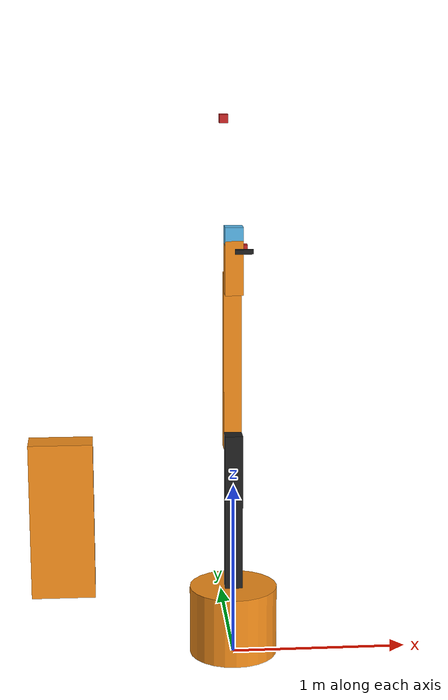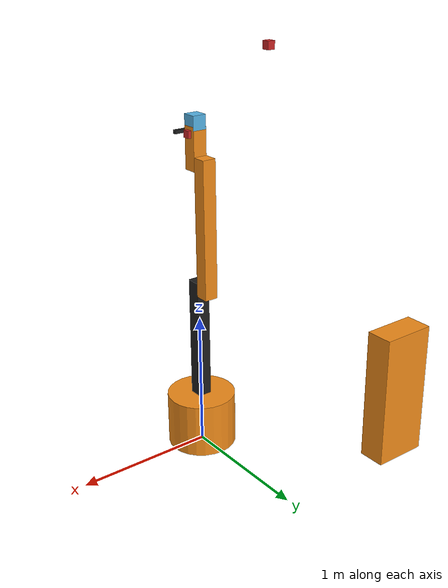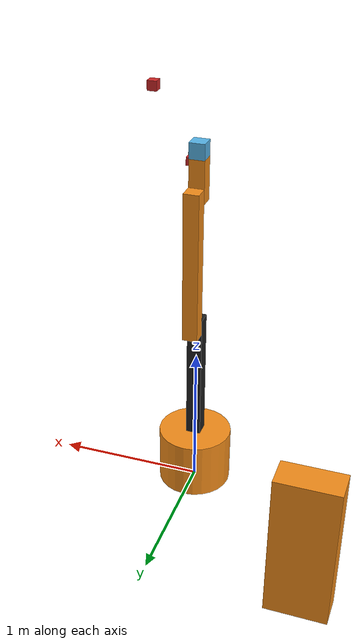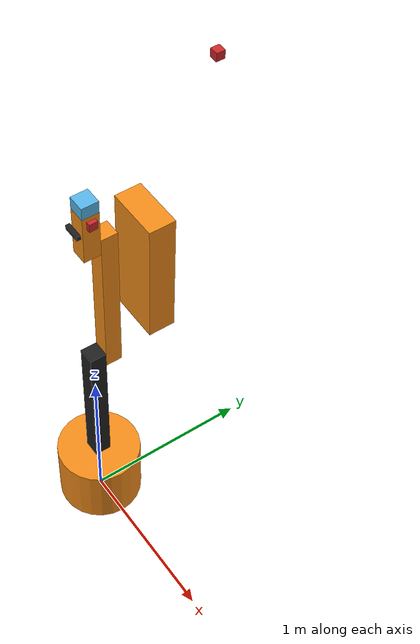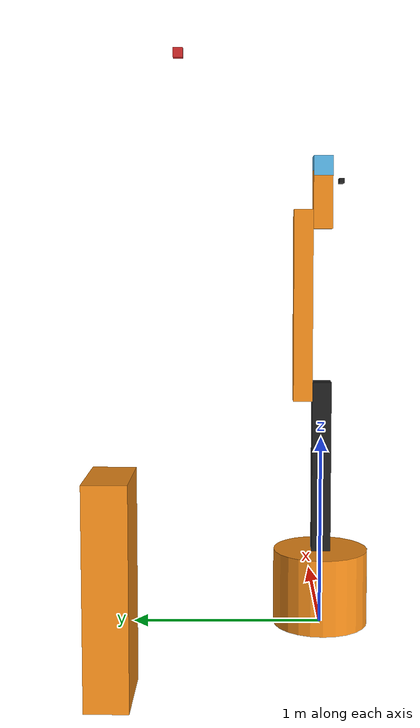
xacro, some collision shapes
<?xml version="1.0"?>
<!-- Revolute-Revolute Manipulator -->
<robot name="rrbot" xmlns:xacro="http://www.ros.org/wiki/xacro">

  <!-- Constants for robot dimensions -->
  <xacro:property name="PI" value="3.1415926535897931"/>
  <xacro:property name="mass" value="1" /> <!-- arbitrary value for mass -->
  <xacro:property name="width" value="0.1" /> <!-- Square dimensions (widthxwidth) of beams -->
  <xacro:property name="height1" value=".4" /> <!-- Link 1 -->
  <xacro:property name="radius1" value=".25" /> <!-- Link 1 -->
  <xacro:property name="height2" value="1" /> <!-- Link 2 -->
  <xacro:property name="height3" value="1" /> <!-- Link 3 -->
  <xacro:property name="height4" value=".30" /> <!-- Link 3 -->
  <xacro:property name="height5" value=".10" /> <!-- Link 3 -->
  <xacro:property name="width1" value=".025" /> <!-- Link 3 -->
  <xacro:property name="dist" value="1.0" /> <!-- Link 3 -->
  <xacro:property name="camera_link" value="0.05" /> <!-- Size of square 'camera' box -->
  <xacro:property name="camera_link_2" value="0.05" /> <!-- Size of square 'camera' box -->
  <xacro:property name="axel_offset" value="0.05" /> <!-- Space btw top of beam and the each joint -->

  <!-- Import all Gazebo-customization elements, including Gazebo colors -->
  <xacro:include filename="$(find rrbot_description)/urdf/rrbot.gazebo" />
  <!-- Import Rviz colors -->
  <xacro:include filename="$(find rrbot_description)/urdf/materials.xacro" />

  <!-- Used for fixing robot to Gazebo 'base_link' -->
  <link name="world"/>

   <xacro:include filename="$(find rrbot_description)/urdf/rrbot_grip.xacro" />

  <joint name="joint0" type="continuous">
    <parent link="world"/>
    <child link="link1"/>
    <origin xyz="0 0 0" rpy="0 0 0"/>
    <axis xyz="0 0 1"/>
    <dynamics damping="0.7"/>
  </joint>

  <joint name="linx_joint" type="prismatic">
    <parent link="world"/>
    <child link="box1"/>
    <axis xyz="1 0 0"/>
    <limit lower="0" upper="5" effort="1000" velocity="1.0"/>
  </joint>

<!--xarco:grip_plam prefix=""/-->

  <joint name="liny_joint" type="prismatic">
    <parent link="box1"/>
    <child link="box"/>
    <axis xyz="0 1 0"/>
    <limit lower="0" upper="5" effort="1000" velocity="0.2"/>
  </joint>

  <!-- Camera -->
  <link name="camera_link_2">
    <collision>
      <origin xyz="0 0 -" rpy="0 0 0"/>
      <geometry>
	<box size="${camera_link_2} ${camera_link_2} ${camera_link_2}"/>
      </geometry>
    </collision>

    <visual>
      <origin xyz="0 0 0" rpy="0 0 0"/>
      <geometry>
	<box size="${camera_link_2} ${camera_link_2} ${camera_link_2}"/>
      </geometry>
      <material name="red"/>
    </visual>

    <inertial>
      <mass value="1e-5" />
      <origin xyz="0 0 0" rpy="0 0 0"/>
      <inertia ixx="1e-6" ixy="0" ixz="0" iyy="1e-6" iyz="0" izz="1e-6" />
    </inertial>
  </link>

  <joint name="camera_optical_joint_2" type="fixed">
    <!-- these values have to be these values otherwise the gazebo camera image
        won't be aligned properly with the frame it is supposedly originating from -->
    <!--origin xyz="0 2 2" rpy="0 ${pi/4} ${-pi/2}"/-->
    <!--origin xyz="3 3 3" rpy="${0/2} ${pi/4} ${-pi/4-pi/2}"/-->
    <!--origin xyz="0 0.75 3" rpy="0 ${pi/2} ${-pi/2}"/-->
    <origin xyz="0 .75 3" rpy="0 ${ pi/2} ${-0/2}"/>
    <!--origin xyz="3 .75 1" rpy="${pi} ${pi} ${0}"/-->
    <parent link="world"/>
    <child link="camera_link_2"/>
  </joint>

  <!-- Base Link -->
  <link name="link1">
    <collision>
      <origin xyz="0 0 ${height1/2}" rpy="0 0 0"/>
      <geometry>
	<cylinder length="${height1}" radius="${radius1}"/>
      </geometry>
    </collision>

    <visual>
      <origin xyz="0 0 ${height1/2}" rpy="0 0 0"/>
      <geometry>
	<cylinder length="${height1}" radius="${radius1}"/>
      </geometry>
      <material name="orange"/>
    </visual>

    <inertial>
      <origin xyz="0 0 ${height1/2}" rpy="0 0 0"/>
      <mass value="${mass}"/>
      <inertia
	  ixx="${mass / 12.0 * (width*width + height1*height1)}" ixy="0.0" ixz="0.0"
	  iyy="${mass / 12.0 * (height1*height1 + width*width)}" iyz="0.0"
	  izz="${mass / 12.0 * (width*width + width*width)}"/>
    </inertial>
  </link>

  <joint name="joint1" type="continuous">
    <parent link="link1"/>
    <child link="link2"/>
    <origin xyz="0 0 ${height1 - axel_offset}" rpy="0 0 0"/>

    <axis xyz="0 1 0"/>
    <dynamics damping="0.7"/>
  </joint>

  <!-- Middle Link -->
  <link name="link2">
    <collision>
      <origin xyz="0 0 ${height2/2 - axel_offset}" rpy="0 0 0"/>
      <geometry>
	<box size="${width} ${width} ${height2}"/>
      </geometry>
    </collision>

    <visual>
      <origin xyz="0 0 ${height2/2 - axel_offset}" rpy="0 0 0"/>
      <geometry>
	<box size="${width} ${width} ${height2}"/>
      </geometry>
      <material name="black"/>
    </visual>

    <inertial>
      <origin xyz="0 0 ${height2/2 - axel_offset}" rpy="0 0 0"/>
      <mass value="${mass}"/>
      <inertia
	  ixx="${mass / 12.0 * (width*width + height2*height2)}" ixy="0.0" ixz="0.0"
	  iyy="${mass / 12.0 * (height2*height2 + width*width)}" iyz="0.0"
	  izz="${mass / 12.0 * (width*width + width*width)}"/>
    </inertial>
  </link>

  <joint name="joint2" type="continuous">
    <parent link="link2"/>
    <child link="link3"/>
    <origin xyz="0 ${width} ${height2 - axel_offset*2}" rpy="0 0 0"/>
    <axis xyz="0 1 0"/>
    <dynamics damping="0.7"/>
  </joint>

  <!-- Top Link -->
  <link name="link3">
    <collision>
      <origin xyz="0 0 ${height3/2 - axel_offset}" rpy="0 0 0"/>
      <geometry>
	<box size="${width} ${width} ${height3}"/>
      </geometry>
    </collision>

    <visual>
      <origin xyz="0 0 ${height3/2 - axel_offset}" rpy="0 0 0"/>
      <geometry>
	<box size="${width} ${width} ${height3}"/>
      </geometry>
      <material name="orange"/>
    </visual>

    <inertial>
      <origin xyz="0 0 ${height3/2 - axel_offset}" rpy="0 0 0"/>
      <mass value="${mass}"/>
      <inertia
	  ixx="${mass / 12.0 * (width*width + height3*height3)}" ixy="0.0" ixz="0.0"
	  iyy="${mass / 12.0 * (height3*height3 + width*width)}" iyz="0.0"
	  izz="${mass / 12.0 * (width*width + width*width)}"/>
    </inertial>
  </link>
  <joint name="joint3" type="continuous">
    <parent link="link3"/>
    <child link="link4"/>
    <origin xyz="0 ${-width} ${height3 - axel_offset*2}" rpy="0 0 0"/>
    <axis xyz="0 1 0"/>
    <dynamics damping="0.7"/>
  </joint>

  <!-- Top Link -->
  <link name="link4">
    <collision>
      <origin xyz="0 0 ${height4/2 - axel_offset}" rpy="0 0 0"/>
      <geometry>
	<box size="${width} ${width} ${height4}"/>
      </geometry>
    </collision>

    <visual>
      <origin xyz="0 0 ${height4/2 - axel_offset}" rpy="0 0 0"/>
      <geometry>
	<box size="${width} ${width} ${height4}"/>
      </geometry>
      <material name="orange"/>
    </visual>

    <inertial>
      <origin xyz="0 0 ${height4/2 - axel_offset}" rpy="0 0 0"/>
      <mass value="${mass}"/>
      <inertia
	  ixx="${mass / 12.0 * (width*width + height4*height4)}" ixy="0.0" ixz="0.0"
	  iyy="${mass / 12.0 * (height4*height4 + width*width)}" iyz="0.0"
	  izz="${mass / 12.0 * (width*width + width*width)}"/>
    </inertial>
  </link>

<!--gripper.................................................................................-->
<link name="link5">
    <collision>
      <origin xyz="0 0 ${height5/2-axel_offset}" rpy="0 ${0/2} 0"/>
      <geometry>
	<box size="${width1} ${width1} ${height5}"/>
      </geometry>
    </collision>

    <visual>
      <origin xyz="0 0 ${height5/2-axel_offset}" rpy="0 ${0/2} 0"/>
      <geometry>
	<box size="${width1} ${width1} ${height5}"/>
      </geometry>
      <material name="black"/>
    </visual>

    <inertial>
      <origin xyz="0 0 ${height5/2-axel_offset}" rpy="0 ${0/2} 0"/>
      <mass value="${0}"/>
      <inertia
	  ixx="${mass / 12.0 * (width*width + height4*height4)}" ixy="0.0" ixz="0.0"
	  iyy="${mass / 12.0 * (height4*height4 + width*width)}" iyz="0.0"
	  izz="${mass / 12.0 * (width*width + width*width)}"/>
    </inertial>
  </link>
  <joint name="joint4" type="fixed">
    <parent link="link4"/>
    <child link="link5"/>
    <origin xyz="0.05 ${-width} ${height4 - axel_offset*2}" rpy="0 ${pi/2} 0"/>
    <!--axis xyz="0 1 0"/-->
    <!--limit effort="30" velocity="1.0" lower="0" upper="0" /-->
    <dynamics damping="0.7"/>
  </joint>

<gazebo>
      <plugin name="gazebo_ros_vacuum_gripper" filename="libgazebo_ros_vacuum_gripper.so">
        <robotNamespace>/rrbot/left_vacuum_gripper</robotNamespace>
        <bodyName>link5</bodyName>
        <topicName>grasping</topicName>
      </plugin>
</gazebo>

  <!-- Hokuyo Laser -->
  <link name="hokuyo_link">
    <collision>
      <origin xyz="0 0 0" rpy="0 0 0"/>
      <geometry>
	<box size="0.1 0.1 0.1"/>
      </geometry>
    </collision>

    <visual>
      <origin xyz="0 0 0" rpy="0 0 0"/>
      <geometry>
        <mesh filename="package://rrbot_description/meshes/hokuyo.dae"/>
      </geometry>
    </visual>

    <inertial>
      <mass value="1e-5" />
      <origin xyz="0 0 0" rpy="0 0 0"/>
      <inertia ixx="1e-6" ixy="0" ixz="0" iyy="1e-6" iyz="0" izz="1e-6" />
    </inertial>
  </link>

  <joint name="hokuyo_joint" type="fixed">
    <axis xyz="0 1 0" />
    <origin xyz="0 0 ${height4 - axel_offset/2}" rpy="0 -1.57 0"/>
    <parent link="link4"/>
    <child link="hokuyo_link"/>
  </joint>

  <joint name="camera_joint" type="fixed">
    <axis xyz="0 1 0" />
    <origin xyz="${camera_link} 0 ${height4 - axel_offset*2}" rpy="0 0 0"/>
    <parent link="link4"/>
    <child link="camera_link"/>
  </joint>

  <!-- Camera -->
  <link name="camera_link">
    <collision>
      <origin xyz="0 0 0" rpy="0 0 0"/>
      <geometry>
	<box size="${camera_link} ${camera_link} ${camera_link}"/>
      </geometry>
    </collision>

    <visual>
      <origin xyz="0 0 0" rpy="0 0 0"/>
      <geometry>
	<box size="${camera_link} ${camera_link} ${camera_link}"/>
      </geometry>
      <material name="red"/>
    </visual>

    <inertial>
      <mass value="1e-5" />
      <origin xyz="0 0 0" rpy="0 0 0"/>
      <inertia ixx="1e-6" ixy="0" ixz="0" iyy="1e-6" iyz="0" izz="1e-6" />
    </inertial>
  </link>

  <!-- generate an optical frame http://www.ros.org/reps/rep-0103.html#suffix-frames
      so that ros and opencv can operate on the camera frame correctly -->
  <joint name="camera_optical_joint" type="fixed">
    <!-- these values have to be these values otherwise the gazebo camera image
        won't be aligned properly with the frame it is supposedly originating from -->
    <origin xyz="0 0 0" rpy="${-pi/2} 0 ${-pi/2}"/>
    <parent link="camera_link"/>
    <child link="camera_link_optical"/>
  </joint>

  <link name="camera_link_optical">
  </link>
   <transmission name="tran0">
    <type>transmission_interface/SimpleTransmission</type>
    <joint name="joint0">
      <hardwareInterface>hardware_interface/EffortJointInterface</hardwareInterface>
    </joint>
    <actuator name="motor0">
      <hardwareInterface>hardware_interface/EffortJointInterface</hardwareInterface>
      <mechanicalReduction>1</mechanicalReduction>
    </actuator>
  </transmission>
  <transmission name="tran1">
    <type>transmission_interface/SimpleTransmission</type>
    <joint name="joint1">
      <hardwareInterface>hardware_interface/EffortJointInterface</hardwareInterface>
    </joint>
    <actuator name="motor1">
      <hardwareInterface>hardware_interface/EffortJointInterface</hardwareInterface>
      <mechanicalReduction>1</mechanicalReduction>
    </actuator>
  </transmission>

  <transmission name="tran2">
    <type>transmission_interface/SimpleTransmission</type>
    <joint name="joint2">
      <hardwareInterface>hardware_interface/EffortJointInterface</hardwareInterface>
    </joint>
    <actuator name="motor2">
      <hardwareInterface>hardware_interface/EffortJointInterface</hardwareInterface>
      <mechanicalReduction>1</mechanicalReduction>
    </actuator>
  </transmission>

  <transmission name="tran3">
    <type>transmission_interface/SimpleTransmission</type>
    <joint name="joint3">
      <hardwareInterface>hardware_interface/EffortJointInterface</hardwareInterface>
    </joint>
    <actuator name="motor3">
      <hardwareInterface>hardware_interface/EffortJointInterface</hardwareInterface>
      <mechanicalReduction>1</mechanicalReduction>
    </actuator>
  </transmission>

<transmission name="lx_transmission">
    <type>transmission_interface/SimpleTransmission</type>
    <joint name="linx_joint">
      <hardwareInterface>hardware_interface/VelocityJointInterface </hardwareInterface>
    </joint>
    <actuator name="lx_motor">
      <hardwareInterface>hardware_interface/VelocityJointInterface </hardwareInterface>
      <mechanicalReduction>1</mechanicalReduction>
    </actuator>
</transmission>
<transmission name="ly_transmission">
    <type>transmission_interface/SimpleTransmission</type>
    <joint name="liny_joint">
      <hardwareInterface>hardware_interface/VelocityJointInterface </hardwareInterface>
    </joint>
    <actuator name="ly_motor">
      <hardwareInterface>hardware_interface/VelocityJointInterface </hardwareInterface>
      <mechanicalReduction>1</mechanicalReduction>
    </actuator>
</transmission>
</robot>

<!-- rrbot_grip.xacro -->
<!-- Revolute-Revolute Manipulator -->
<robot name="rrbot" xmlns:xacro="http://www.ros.org/wiki/xacro">

  <!-- Constants for robot dimensions -->

<link name="box">
    <collision>
      <origin xyz="-1 ${dist} .5" rpy="0 0 0"/>
      <geometry>
	<box size=".4 .2 1.0"/>
      </geometry>
    </collision>
   <visual>
      <origin xyz="-1 ${dist} .5" rpy="0 0 0"/>
      <geometry>
	<box size=".4 .2 1.0"/>
      </geometry>
      <material name="orange"/>
    </visual>

    <inertial>
      <origin xyz="-1 ${2.0} 0.5" rpy="0 0 0"/>
      <mass value="${mass}"/>
      <inertia
	  ixx="${mass / 12.0 * (width*width + height1*height1)}" ixy="0.0" ixz="0.0"
	  iyy="${mass / 12.0 * (height1*height1 + width*width)}" iyz="0.0"
	  izz="${mass / 12.0 * (width*width + width*width)}"/>
    </inertial>
  </link>

  <!--xarco:macro name="grip_plam" params="prefix"-->
<link name="box1">

    <inertial>
      <origin xyz="-1 ${2.0} 0.1" rpy="0 0 0"/>
      <mass value="${mass}"/>
      <inertia
	  ixx="${mass / 12.0 * (width*width + height1*height1)}" ixy="0.0" ixz="0.0"
	  iyy="${mass / 12.0 * (height1*height1 + width*width)}" iyz="0.0"
	  izz="${mass / 12.0 * (width*width + width*width)}"/>
    </inertial>
  </link>

</robot>
